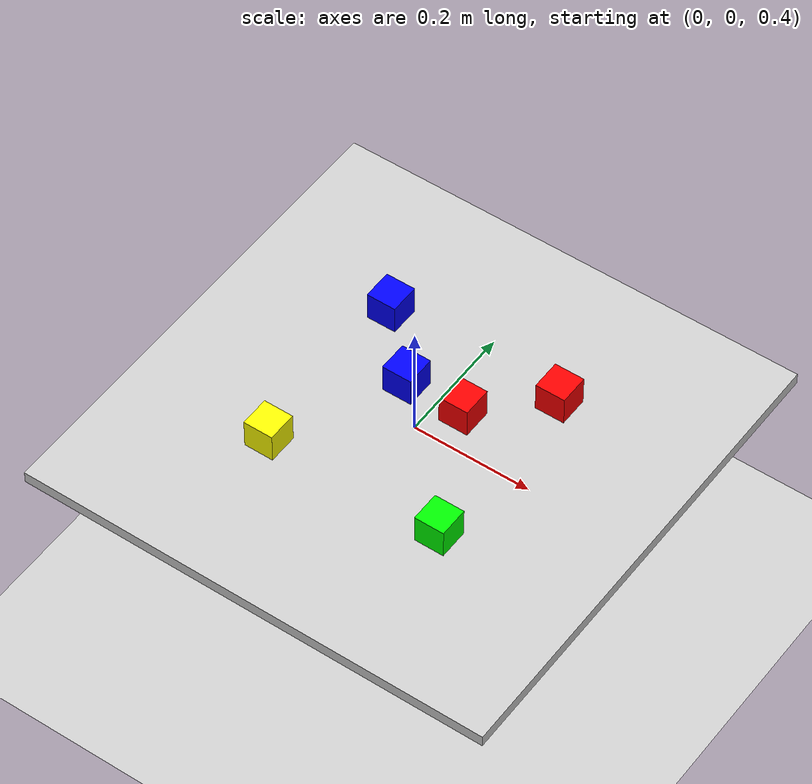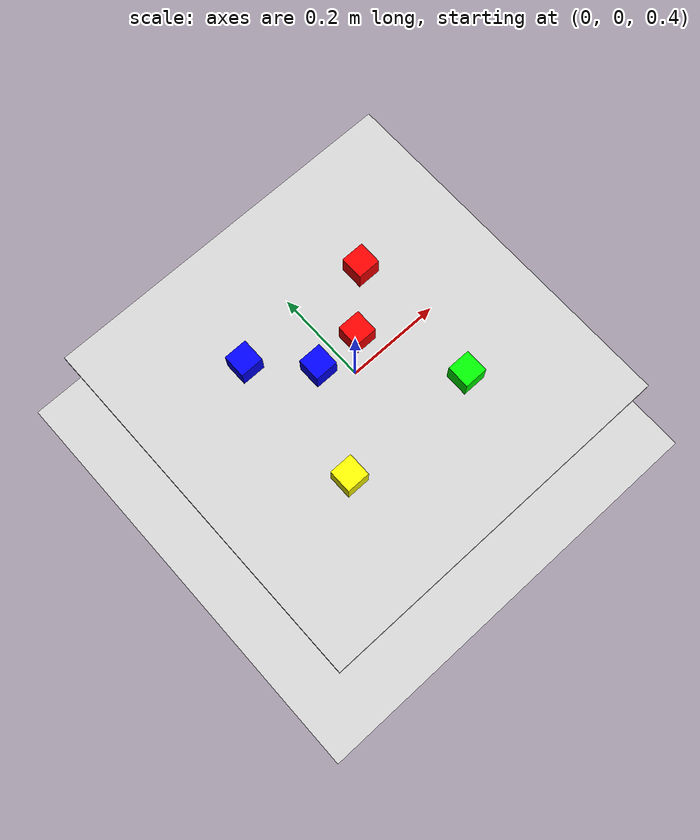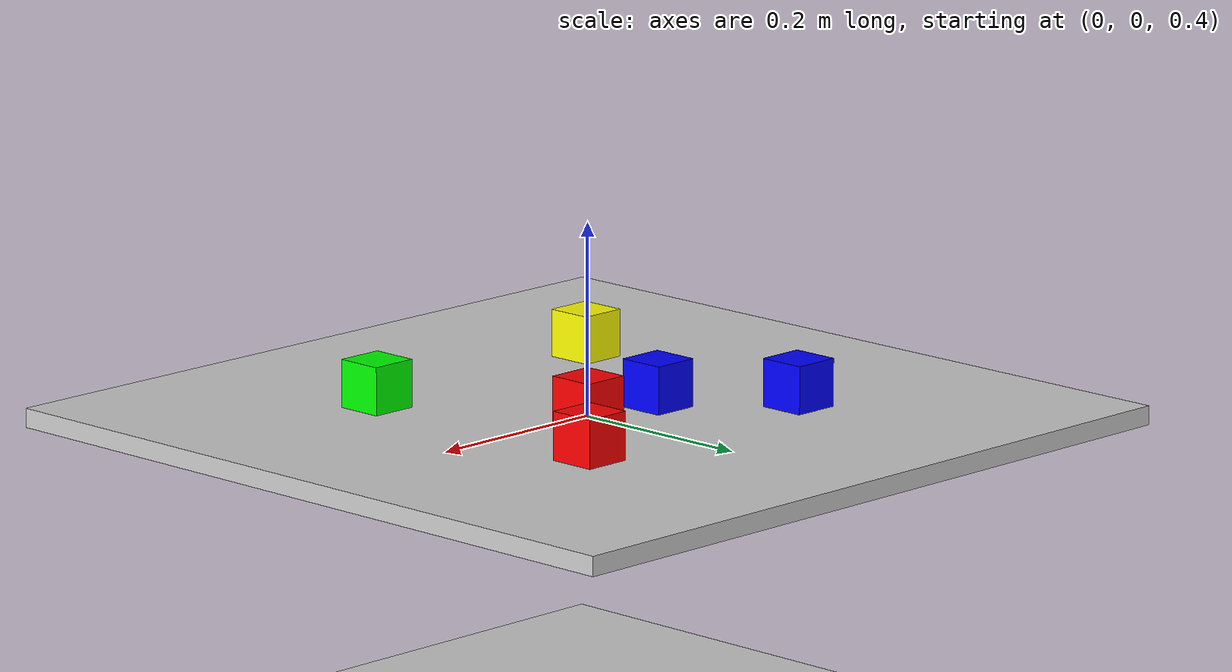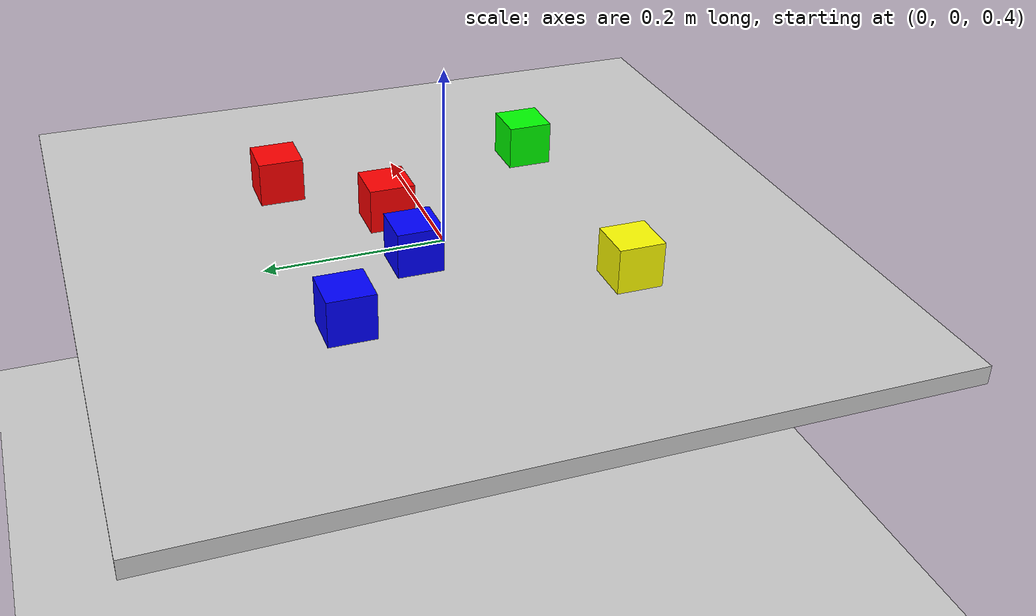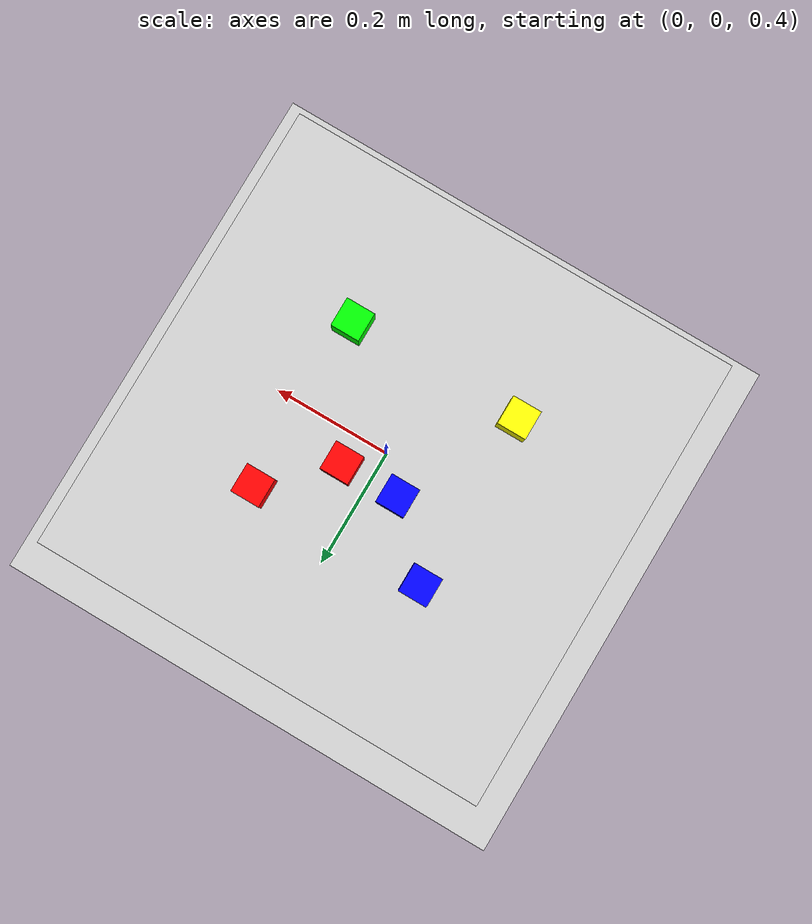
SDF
<?xml version="1.0"?>
<sdf version="1.6">
  <world name="blocks_world">

    <!-- Physics settings -->
    <physics type="ode">
      <max_step_size>0.001</max_step_size>
      <real_time_factor>1</real_time_factor>
      <real_time_update_rate>1000</real_time_update_rate>
      <gravity>0 0 -9.81</gravity>
    </physics>

    <!-- Lighting -->
    <include>
      <uri>model://sun</uri>
    </include>

    <!-- Ground plane -->
    <include>
      <uri>model://ground_plane</uri>
    </include>

    <!-- Table -->
    <model name="table">
      <static>true</static>
      <link name="link">
        <pose>0 0 0.4 0 0 0</pose>
        <collision name="collision">
          <geometry>
            <box>
              <size>0.8 0.8 0.02</size>
            </box>
          </geometry>
        </collision>
        <visual name="visual">
          <geometry>
            <box>
              <size>0.8 0.8 0.02</size>
            </box>
          </geometry>
          <material>
            <ambient>0.8 0.8 0.8 1</ambient>
            <diffuse>0.8 0.8 0.8 1</diffuse>
          </material>
        </visual>
      </link>
    </model>

    <!-- Red Block 1 -->
    <model name="red_block_1">
      <pose>0.15 0.15 0.435 0 0 0</pose>
      <link name="link">
        <inertial>
          <mass>0.1</mass>
          <inertia>
            <ixx>0.000017</ixx>
            <iyy>0.000017</iyy>
            <izz>0.000017</izz>
          </inertia>
        </inertial>
        <collision name="collision">
          <geometry>
            <box>
              <size>0.05 0.05 0.05</size>
            </box>
          </geometry>
        </collision>
        <visual name="visual">
          <geometry>
            <box>
              <size>0.05 0.05 0.05</size>
            </box>
          </geometry>
          <material>
            <ambient>1 0 0 1</ambient>
            <diffuse>1 0 0 1</diffuse>
          </material>
        </visual>
      </link>
    </model>

    <!-- Blue Block 1 -->
    <model name="blue_block_1">
      <pose>-0.15 0.15 0.435 0 0 0</pose>
      <link name="link">
        <inertial>
          <mass>0.1</mass>
          <inertia>
            <ixx>0.000017</ixx>
            <iyy>0.000017</iyy>
            <izz>0.000017</izz>
          </inertia>
        </inertial>
        <collision name="collision">
          <geometry>
            <box>
              <size>0.05 0.05 0.05</size>
            </box>
          </geometry>
        </collision>
        <visual name="visual">
          <geometry>
            <box>
              <size>0.05 0.05 0.05</size>
            </box>
          </geometry>
          <material>
            <ambient>0 0 1 1</ambient>
            <diffuse>0 0 1 1</diffuse>
          </material>
        </visual>
      </link>
    </model>

    <!-- Green Block 1 -->
    <model name="green_block_1">
      <pose>0.15 -0.15 0.435 0 0 0</pose>
      <link name="link">
        <inertial>
          <mass>0.1</mass>
          <inertia>
            <ixx>0.000017</ixx>
            <iyy>0.000017</iyy>
            <izz>0.000017</izz>
          </inertia>
        </inertial>
        <collision name="collision">
          <geometry>
            <box>
              <size>0.05 0.05 0.05</size>
            </box>
          </geometry>
        </collision>
        <visual name="visual">
          <geometry>
            <box>
              <size>0.05 0.05 0.05</size>
            </box>
          </geometry>
          <material>
            <ambient>0 1 0 1</ambient>
            <diffuse>0 1 0 1</diffuse>
          </material>
        </visual>
      </link>
    </model>

    <!-- Yellow Block 1 -->
    <model name="yellow_block_1">
      <pose>-0.15 -0.15 0.435 0 0 0</pose>
      <link name="link">
        <inertial>
          <mass>0.1</mass>
          <inertia>
            <ixx>0.000017</ixx>
            <iyy>0.000017</iyy>
            <izz>0.000017</izz>
          </inertia>
        </inertial>
        <collision name="collision">
          <geometry>
            <box>
              <size>0.05 0.05 0.05</size>
            </box>
          </geometry>
        </collision>
        <visual name="visual">
          <geometry>
            <box>
              <size>0.05 0.05 0.05</size>
            </box>
          </geometry>
          <material>
            <ambient>1 1 0 1</ambient>
            <diffuse>1 1 0 1</diffuse>
          </material>
        </visual>
      </link>
    </model>

    <!-- Red Block 2 -->
    <model name="red_block_2">
      <pose>0.05 0.05 0.435 0 0 0</pose>
      <link name="link">
        <inertial>
          <mass>0.1</mass>
          <inertia>
            <ixx>0.000017</ixx>
            <iyy>0.000017</iyy>
            <izz>0.000017</izz>
          </inertia>
        </inertial>
        <collision name="collision">
          <geometry>
            <box>
              <size>0.05 0.05 0.05</size>
            </box>
          </geometry>
        </collision>
        <visual name="visual">
          <geometry>
            <box>
              <size>0.05 0.05 0.05</size>
            </box>
          </geometry>
          <material>
            <ambient>1 0 0 1</ambient>
            <diffuse>1 0 0 1</diffuse>
          </material>
        </visual>
      </link>
    </model>

    <!-- Blue Block 2 -->
    <model name="blue_block_2">
      <pose>-0.05 0.05 0.435 0 0 0</pose>
      <link name="link">
        <inertial>
          <mass>0.1</mass>
          <inertia>
            <ixx>0.000017</ixx>
            <iyy>0.000017</iyy>
            <izz>0.000017</izz>
          </inertia>
        </inertial>
        <collision name="collision">
          <geometry>
            <box>
              <size>0.05 0.05 0.05</size>
            </box>
          </geometry>
        </collision>
        <visual name="visual">
          <geometry>
            <box>
              <size>0.05 0.05 0.05</size>
            </box>
          </geometry>
          <material>
            <ambient>0 0 1 1</ambient>
            <diffuse>0 0 1 1</diffuse>
          </material>
        </visual>
      </link>
    </model>

    <!-- GUI settings -->
    <gui fullscreen='0'>
      <camera name='user_camera'>
        <pose>1.2 -0.8 1.0 0 0.4 2.4</pose>
        <view_controller>orbit</view_controller>
      </camera>
    </gui>

  </world>
</sdf>
